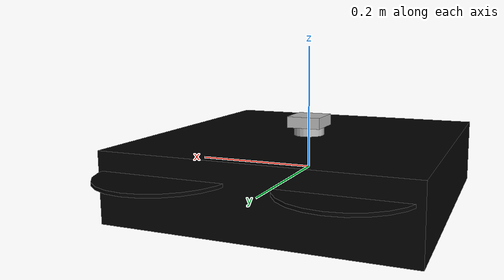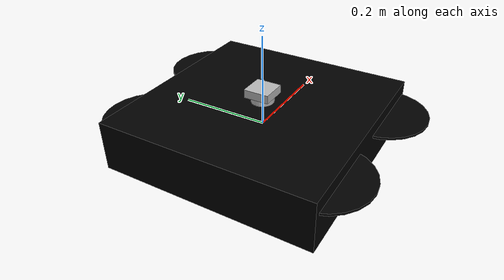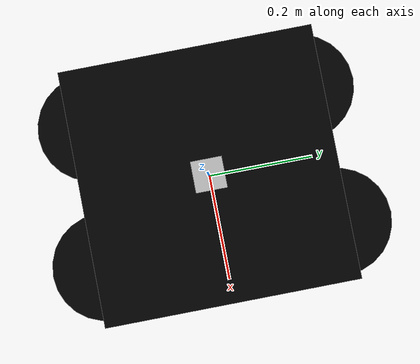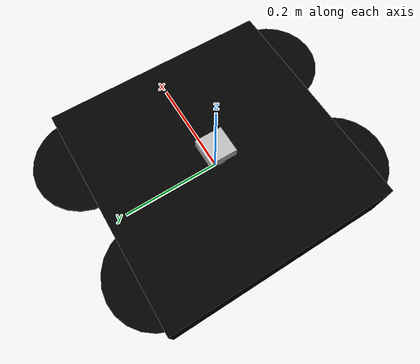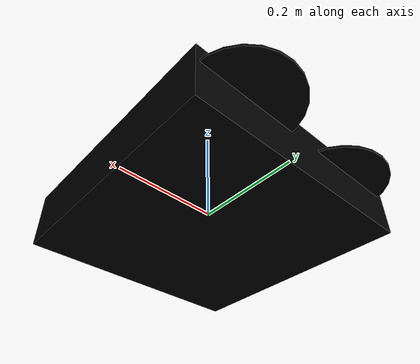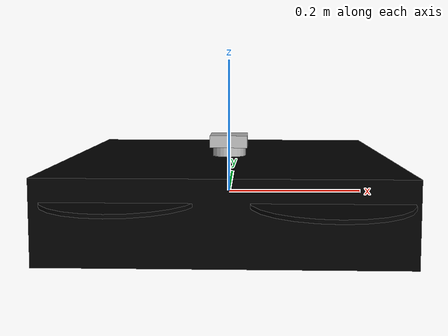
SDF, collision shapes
<sdf version='1.11'>
  <model name='x3_urdf_convr'>
    <link name='base_link'>
      <pose>0 0 0 0 0 0</pose>
      <inertial>
        <pose>0 0 0 0 0 0</pose>
        <mass>1.5</mass>
        <inertia>
          <ixx>0.034756299999999997</ixx>
          <ixy>0</ixy>
          <ixz>0</ixz>
          <iyy>0.070000000000000007</iyy>
          <iyz>0</iyz>
          <izz>0.097699999999999995</izz>
        </inertia>
      </inertial>
      <collision name='base_link_inertia_collision'>
        <pose>0 0 0 0 0 0</pose>
        <geometry>
          <box>
            <size>0.46999999999999997 0.46999999999999997 0.11</size>
          </box>
        </geometry>
      </collision>
      <visual name='base_link_inertia_visual'>
        <pose>0 0 0 0 0 0</pose>
        <geometry>
          <mesh>
            <scale>1 1 1</scale>
            <uri>package://drone_cpp/models/x3/meshes/x3.dae</uri>
          </mesh>
        </geometry>
        <material>
          <ambient>0 0 0 1</ambient>
          <diffuse>0 0 0 1</diffuse>
        </material>
      </visual>
    </link>
    <link name='link'>
      <pose>0 0 0 0 0 0</pose>
      <inertial>
        <pose>0 0 0.043499999999999997 0 0 0</pose>
        <mass>0.37</mass>
        <inertia>
          <ixx>0.00034437749999999994</ixx>
          <ixy>0</ixy>
          <ixz>0</ixz>
          <iyy>0.00034437749999999994</iyy>
          <iyz>0</iyz>
          <izz>0.00022199999999999998</izz>
        </inertia>
      </inertial>
      <collision name='collision_base'>
        <pose>0 0 0.020500000000000001 0 0 0</pose>
        <geometry>
          <box>
            <size>0.059999999999999998 0.059999999999999998 0.041000000000000002</size>
          </box>
        </geometry>
      </collision>
      <collision name='collision_mid'>
        <pose>0 0 0.055 0 0 0</pose>
        <geometry>
          <cylinder>
            <radius>0.025000000000000001</radius>
            <length>0.028000000000000001</length>
          </cylinder>
        </geometry>
      </collision>
      <collision name='collision_top'>
        <pose>0 0 0.078 0 0 0</pose>
        <geometry>
          <box>
            <size>0.056000000000000001 0.056000000000000001 0.017999999999999999</size>
          </box>
        </geometry>
      </collision>
      <visual name='visual'>
        <geometry>
          <mesh>
            <uri>package://drone_cpp/models/lidar_2d_v2/meshes/lidar_2d_v2.dae</uri>
          </mesh>
        </geometry>
      </visual>
      <sensor name='lidar_2d_v2' type='gpu_lidar'>
        <pose>0 0 0.055 0 0 0</pose>
        <topic>/scan</topic>
        <ray>
          <scan>
            <horizontal>
              <samples>1080</samples>
              <resolution>1</resolution>
              <min_angle>-2.356195</min_angle>
              <max_angle>2.356195</max_angle>
            </horizontal>
          </scan>
          <range>
            <min>0.10000000000000001</min>
            <max>30</max>
            <resolution>0.01</resolution>
          </range>
          <noise>
            <type>gaussian</type>
            <mean>0</mean>
            <stddev>0.001</stddev>
          </noise>
        </ray>
        <always_on>false</always_on>
        <update_rate>30</update_rate>
        <visualize>false</visualize>
        <gz_frame_id>link</gz_frame_id>
      </sensor>
    </link>
    <joint name='LidarJoint' type='fixed'>
      <parent>base_link</parent>
      <child>link</child>
      <pose relative_to='base_link'>0 0 0 0 0 0</pose>
    </joint>
    <link name='rotor_0'>
      <pose>0.13 -0.22 0.023 0 0 0</pose>
      <inertial>
        <pose>0 0 0 0 0 0</pose>
        <mass>0.0050000000000000001</mass>
        <inertia>
          <ixx>9.7499999999999998e-07</ixx>
          <ixy>0</ixy>
          <ixz>0</ixz>
          <iyy>4.1704099999999999e-05</iyy>
          <iyz>0</iyz>
          <izz>4.2604100000000001e-05</izz>
        </inertia>
      </inertial>
      <collision name='rotor_0_collision'>
        <pose>0 0 0 0 0 0</pose>
        <geometry>
          <cylinder>
            <length>0.0050000000000000001</length>
            <radius>0.10000000000000001</radius>
          </cylinder>
        </geometry>
        <surface>
          <contact>
            <ode/>
          </contact>
          <friction>
            <ode/>
          </friction>
        </surface>
      </collision>
      <visual name='rotor_0_visual'>
        <pose>0 0 0 0 0 0</pose>
        <geometry>
          <mesh>
            <scale>0.10000000000000001 0.10000000000000001 0.10000000000000001</scale>
            <uri>package://drone_cpp/models/x3/meshes/propeller_ccw.dae</uri>
          </mesh>
        </geometry>
        <material>
          <ambient>0 0 0 1</ambient>
          <diffuse>0 0 0 1</diffuse>
        </material>
      </visual>
      <gravity>true</gravity>
      <velocity_decay/>
    </link>
    <joint name='rotor_0_joint' type='revolute'>
      <child>rotor_0</child>
      <parent>base_link</parent>
      <axis>
        <xyz expressed_in='__model__'>0 0 1</xyz>
        <limit>
          <lower>-10000000000000000</lower>
          <upper>10000000000000000</upper>
        </limit>
        <dynamics>
          <spring_reference>0</spring_reference>
          <spring_stiffness>0</spring_stiffness>
        </dynamics>
      </axis>
    </joint>
    <link name='rotor_1'>
      <pose>-0.13 0.20000000000000001 0.023 0 0 0</pose>
      <inertial>
        <pose>0 0 0 0 0 0</pose>
        <mass>0.0050000000000000001</mass>
        <inertia>
          <ixx>9.7499999999999998e-07</ixx>
          <ixy>0</ixy>
          <ixz>0</ixz>
          <iyy>4.1704099999999999e-05</iyy>
          <iyz>0</iyz>
          <izz>4.2604100000000001e-05</izz>
        </inertia>
      </inertial>
      <collision name='rotor_1_collision'>
        <pose>0 0 0 0 0 0</pose>
        <geometry>
          <cylinder>
            <length>0.0050000000000000001</length>
            <radius>0.10000000000000001</radius>
          </cylinder>
        </geometry>
        <surface>
          <contact>
            <ode/>
          </contact>
          <friction>
            <ode/>
          </friction>
        </surface>
      </collision>
      <visual name='rotor_1_visual'>
        <pose>0 0 0 0 0 0</pose>
        <geometry>
          <mesh>
            <scale>0.10000000000000001 0.10000000000000001 0.10000000000000001</scale>
            <uri>package://drone_cpp/models/x3/meshes/propeller_ccw.dae</uri>
          </mesh>
        </geometry>
        <material>
          <ambient>0 0 0 1</ambient>
          <diffuse>0 0 0 1</diffuse>
        </material>
      </visual>
      <gravity>true</gravity>
      <velocity_decay/>
    </link>
    <joint name='rotor_1_joint' type='revolute'>
      <child>rotor_1</child>
      <parent>base_link</parent>
      <axis>
        <xyz expressed_in='__model__'>0 0 1</xyz>
        <limit>
          <lower>-10000000000000000</lower>
          <upper>10000000000000000</upper>
        </limit>
        <dynamics>
          <spring_reference>0</spring_reference>
          <spring_stiffness>0</spring_stiffness>
        </dynamics>
      </axis>
    </joint>
    <link name='rotor_2'>
      <pose>0.13 0.22 0.023 0 0 0</pose>
      <inertial>
        <pose>0 0 0 0 0 0</pose>
        <mass>0.0050000000000000001</mass>
        <inertia>
          <ixx>9.7499999999999998e-07</ixx>
          <ixy>0</ixy>
          <ixz>0</ixz>
          <iyy>4.1704099999999999e-05</iyy>
          <iyz>0</iyz>
          <izz>4.2604100000000001e-05</izz>
        </inertia>
      </inertial>
      <collision name='rotor_2_collision'>
        <pose>0 0 0 0 0 0</pose>
        <geometry>
          <cylinder>
            <length>0.0050000000000000001</length>
            <radius>0.10000000000000001</radius>
          </cylinder>
        </geometry>
        <surface>
          <contact>
            <ode/>
          </contact>
          <friction>
            <ode/>
          </friction>
        </surface>
      </collision>
      <visual name='rotor_2_visual'>
        <pose>0 0 0 0 0 0</pose>
        <geometry>
          <mesh>
            <scale>0.10000000000000001 0.10000000000000001 0.10000000000000001</scale>
            <uri>package://drone_cpp/models/x3/meshes/propeller_cw.dae</uri>
          </mesh>
        </geometry>
        <material>
          <ambient>0 0 0 1</ambient>
          <diffuse>0 0 0 1</diffuse>
        </material>
      </visual>
      <gravity>true</gravity>
      <velocity_decay/>
    </link>
    <joint name='rotor_2_joint' type='revolute'>
      <child>rotor_2</child>
      <parent>base_link</parent>
      <axis>
        <xyz expressed_in='__model__'>0 0 1</xyz>
        <limit>
          <lower>-10000000000000000</lower>
          <upper>10000000000000000</upper>
        </limit>
        <dynamics>
          <spring_reference>0</spring_reference>
          <spring_stiffness>0</spring_stiffness>
        </dynamics>
      </axis>
    </joint>
    <link name='rotor_3'>
      <pose>-0.13 -0.20000000000000001 0.023 0 0 0</pose>
      <inertial>
        <pose>0 0 0 0 0 0</pose>
        <mass>0.0050000000000000001</mass>
        <inertia>
          <ixx>9.7499999999999998e-07</ixx>
          <ixy>0</ixy>
          <ixz>0</ixz>
          <iyy>4.1704099999999999e-05</iyy>
          <iyz>0</iyz>
          <izz>4.2604100000000001e-05</izz>
        </inertia>
      </inertial>
      <collision name='rotor_3_collision'>
        <pose>0 0 0 0 0 0</pose>
        <geometry>
          <cylinder>
            <length>0.0050000000000000001</length>
            <radius>0.10000000000000001</radius>
          </cylinder>
        </geometry>
        <surface>
          <contact>
            <ode/>
          </contact>
          <friction>
            <ode/>
          </friction>
        </surface>
      </collision>
      <visual name='rotor_3_visual'>
        <pose>0 0 0 0 0 0</pose>
        <geometry>
          <mesh>
            <scale>0.10000000000000001 0.10000000000000001 0.10000000000000001</scale>
            <uri>package://drone_cpp/models/x3/meshes/propeller_cw.dae</uri>
          </mesh>
        </geometry>
        <material>
          <ambient>0 0 0 1</ambient>
          <diffuse>0 0 0 1</diffuse>
        </material>
      </visual>
      <gravity>true</gravity>
      <velocity_decay/>
    </link>
    <joint name='rotor_3_joint' type='revolute'>
      <child>rotor_3</child>
      <parent>base_link</parent>
      <axis>
        <xyz expressed_in='__model__'>0 0 1</xyz>
        <limit>
          <lower>-10000000000000000</lower>
          <upper>10000000000000000</upper>
        </limit>
        <dynamics>
          <spring_reference>0</spring_reference>
          <spring_stiffness>0</spring_stiffness>
        </dynamics>
      </axis>
    </joint>
    <plugin name='gz::sim::systems::MulticopterMotorModel' filename='gz-sim-multicopter-motor-model-system'>
      <robotNamespace/>
      <jointName>rotor_0_joint</jointName>
      <linkName>rotor_0</linkName>
      <turningDirection>ccw</turningDirection>
      <timeConstantUp>0.0125</timeConstantUp>
      <timeConstantDown>0.025</timeConstantDown>
      <maxRotVelocity>800.0</maxRotVelocity>
      <motorConstant>8.54858e-06</motorConstant>
      <momentConstant>0.016</momentConstant>
      <commandSubTopic>gazebo/command/motor_speed</commandSubTopic>
      <actuator_number>0</actuator_number>
      <rotorDragCoefficient>8.06428e-05</rotorDragCoefficient>
      <rollingMomentCoefficient>1e-06</rollingMomentCoefficient>
      <motorSpeedPubTopic>motor_speed/0</motorSpeedPubTopic>
      <rotorVelocitySlowdownSim>10</rotorVelocitySlowdownSim>
      <motorType>velocity</motorType>
    </plugin>
    <plugin name='gz::sim::systems::MulticopterMotorModel' filename='gz-sim-multicopter-motor-model-system'>
      <robotNamespace/>
      <jointName>rotor_1_joint</jointName>
      <linkName>rotor_1</linkName>
      <turningDirection>ccw</turningDirection>
      <timeConstantUp>0.0125</timeConstantUp>
      <timeConstantDown>0.025</timeConstantDown>
      <maxRotVelocity>800.0</maxRotVelocity>
      <motorConstant>8.54858e-06</motorConstant>
      <momentConstant>0.016</momentConstant>
      <commandSubTopic>gazebo/command/motor_speed</commandSubTopic>
      <actuator_number>1</actuator_number>
      <rotorDragCoefficient>8.06428e-05</rotorDragCoefficient>
      <rollingMomentCoefficient>1e-06</rollingMomentCoefficient>
      <motorSpeedPubTopic>motor_speed/1</motorSpeedPubTopic>
      <rotorVelocitySlowdownSim>10</rotorVelocitySlowdownSim>
      <motorType>velocity</motorType>
    </plugin>
    <plugin name='gz::sim::systems::MulticopterMotorModel' filename='gz-sim-multicopter-motor-model-system'>
      <robotNamespace/>
      <jointName>rotor_2_joint</jointName>
      <linkName>rotor_2</linkName>
      <turningDirection>cw</turningDirection>
      <timeConstantUp>0.0125</timeConstantUp>
      <timeConstantDown>0.025</timeConstantDown>
      <maxRotVelocity>800.0</maxRotVelocity>
      <motorConstant>8.54858e-06</motorConstant>
      <momentConstant>0.016</momentConstant>
      <commandSubTopic>gazebo/command/motor_speed</commandSubTopic>
      <actuator_number>2</actuator_number>
      <rotorDragCoefficient>8.06428e-05</rotorDragCoefficient>
      <rollingMomentCoefficient>1e-06</rollingMomentCoefficient>
      <motorSpeedPubTopic>motor_speed/2</motorSpeedPubTopic>
      <rotorVelocitySlowdownSim>10</rotorVelocitySlowdownSim>
      <motorType>velocity</motorType>
    </plugin>
    <plugin name='gz::sim::systems::MulticopterMotorModel' filename='gz-sim-multicopter-motor-model-system'>
      <robotNamespace/>
      <jointName>rotor_3_joint</jointName>
      <linkName>rotor_3</linkName>
      <turningDirection>cw</turningDirection>
      <timeConstantUp>0.0125</timeConstantUp>
      <timeConstantDown>0.025</timeConstantDown>
      <maxRotVelocity>800.0</maxRotVelocity>
      <motorConstant>8.54858e-06</motorConstant>
      <momentConstant>0.016</momentConstant>
      <commandSubTopic>gazebo/command/motor_speed</commandSubTopic>
      <actuator_number>3</actuator_number>
      <rotorDragCoefficient>8.06428e-05</rotorDragCoefficient>
      <rollingMomentCoefficient>1e-06</rollingMomentCoefficient>
      <motorSpeedPubTopic>motor_speed/3</motorSpeedPubTopic>
      <rotorVelocitySlowdownSim>10</rotorVelocitySlowdownSim>
      <motorType>velocity</motorType>
    </plugin>
    <plugin name='gz::sim::systems::MulticopterVelocityControl' filename='gz-sim-multicopter-control-system'>
      <robotNamespace/>
      <commandSubTopic>cmd_vel</commandSubTopic>
      <enableSubTopic>enable</enableSubTopic>
      <comLinkName>base_link</comLinkName>
      <velocityGain>2.7 2.7 2.7</velocityGain>
      <attitudeGain>2 3 0.15</attitudeGain>
      <angularRateGain>0.4 0.52 0.18</angularRateGain>
      <maximumLinearAcceleration>2 2 2</maximumLinearAcceleration>
      <rotorConfiguration>
        <rotor>
          <jointName>rotor_0_joint</jointName>
          <forceConstant>8.54858e-06</forceConstant>
          <momentConstant>0.016</momentConstant>
          <direction>1</direction>
        </rotor>
        <rotor>
          <jointName>rotor_1_joint</jointName>
          <forceConstant>8.54858e-06</forceConstant>
          <momentConstant>0.016</momentConstant>
          <direction>1</direction>
        </rotor>
        <rotor>
          <jointName>rotor_2_joint</jointName>
          <forceConstant>8.54858e-06</forceConstant>
          <momentConstant>0.016</momentConstant>
          <direction>-1</direction>
        </rotor>
        <rotor>
          <jointName>rotor_3_joint</jointName>
          <forceConstant>8.54858e-06</forceConstant>
          <momentConstant>0.016</momentConstant>
          <direction>-1</direction>
        </rotor>
      </rotorConfiguration>
    </plugin>
    <plugin name='gz::sim::systems::OdometryPublisher' filename='gz-sim-odometry-publisher-system'>
      <dimensions>2</dimensions>
      <odom_topic>/odom</odom_topic>
      <tf_topic>/tf</tf_topic>
      <robot_base_frame>base_link</robot_base_frame>
      <odom_frame>odom</odom_frame>
    </plugin>
    <plugin name='gz::sim::systems::JointStatePublisher' filename='gz-sim-joint-state-publisher-system'>
      <topic>/joint_states</topic>
    </plugin>
  </model>
</sdf>
